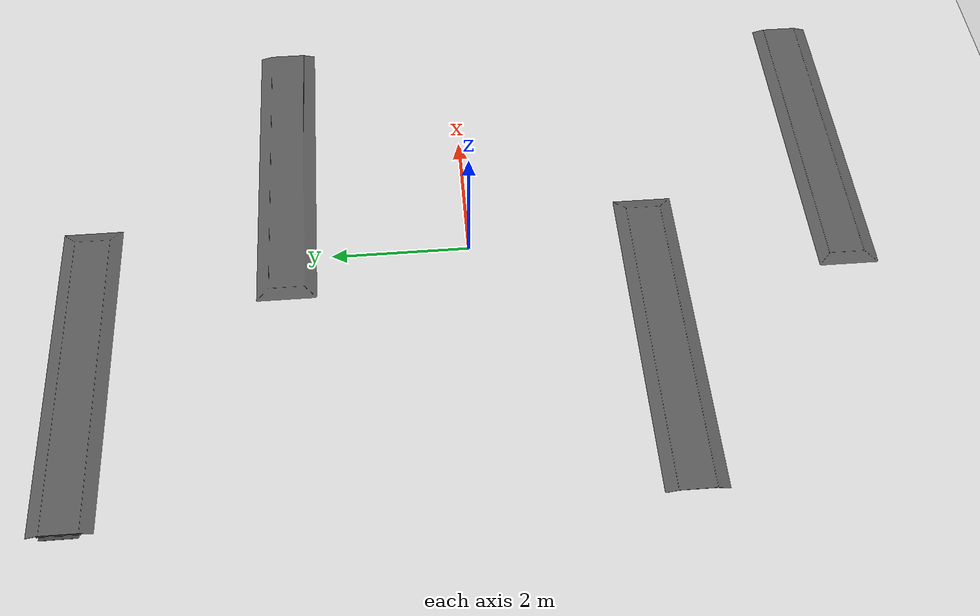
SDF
<?xml version="1.0" ?>
<sdf version="1.4">
  <world name="ramps">
    <include>
      <uri>model://sun</uri>
    </include>
    <include>
      <pose>0 0 -1 0 0 0</pose>
      <uri>model://ground_plane</uri>
    </include>
    <model name="ramps">
      <static>true</static>
      <link name="link">
        <pose>0 0 0 0 0 0</pose>
        <collision name="collision">
          <geometry>
            <mesh>
              <uri>model://meshes/ramps.dae</uri>
              <scale>1 1 1</scale>
            </mesh>
          </geometry>
        </collision>
        <visual name="visual">
          <geometry>
            <mesh>
             <uri>model://meshes/ramps.dae</uri>
              <scale>1 1 1</scale>
            </mesh>
          </geometry>
        </visual>
      </link>
    </model>
  </world>
</sdf>
